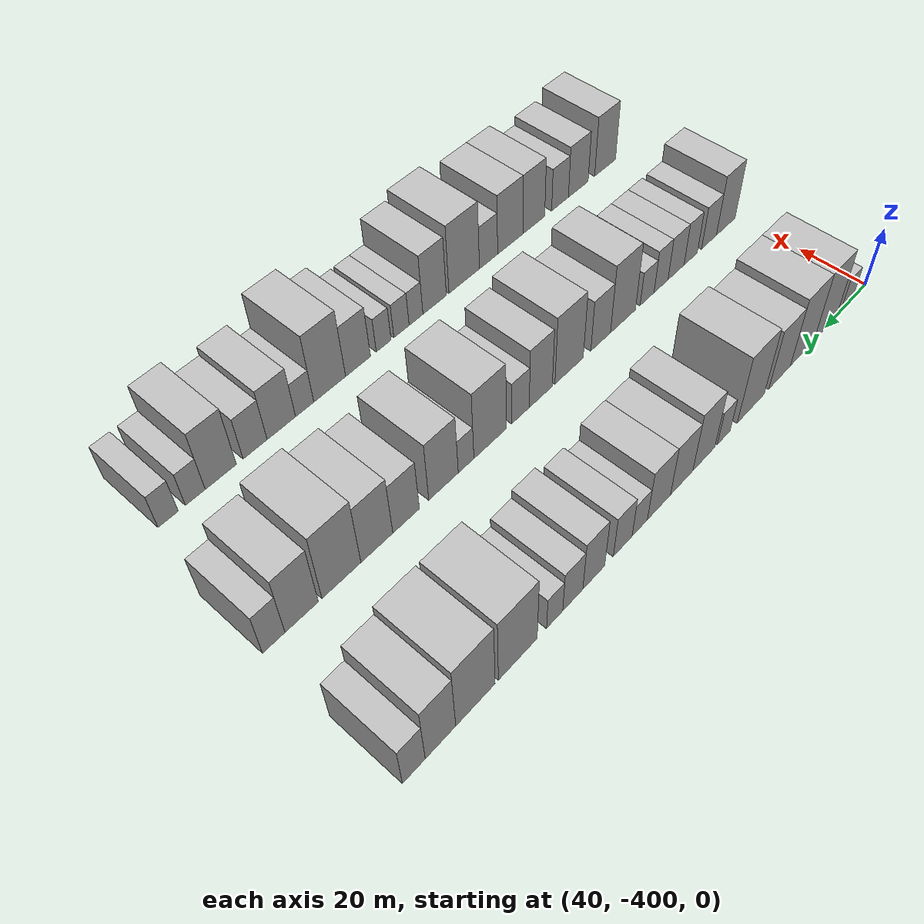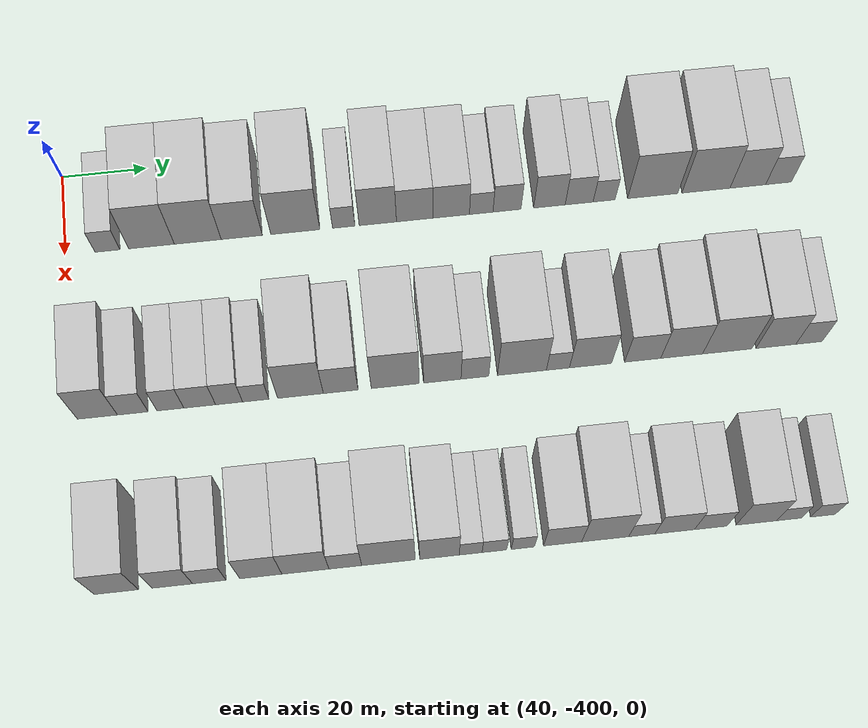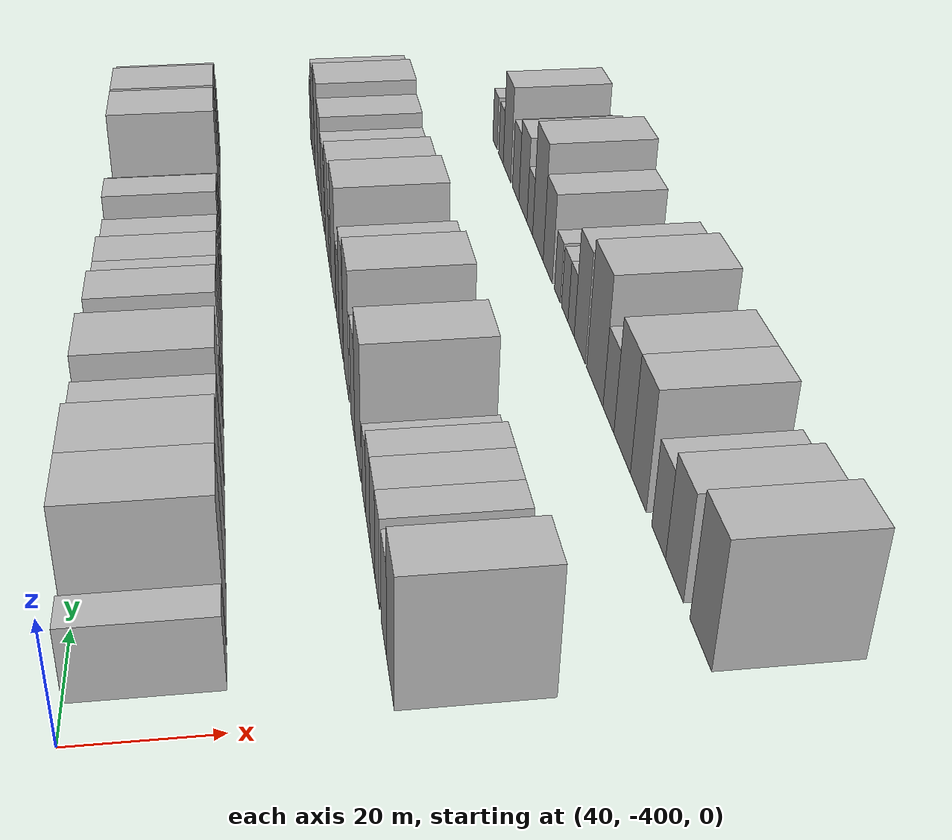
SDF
<sdf version="1.6">
 <world name="default">
  <model name="building_22">
   <static>1</static>
   <pose>50.0000 -390.0511 0 0.000000 0.000000 0.000000</pose>
   <link name="link">
    <pose>0 0 6.00 0 0 0</pose>
    <collision name="collision"><geometry><box><size>20.0000 5.8420 12.0000</size></box></geometry></collision>
    <visual name="visual">
     <cast_shadows>0</cast_shadows>
     <geometry><box><size>20.0000 5.8420 12.0000</size></box></geometry>
     <material>
      <script>
       <uri>model://HANNAS_wall/materials/scripts</uri>
       <uri>model://HANNAS_wall/materials/textures</uri>
       <name>vrc/HANNAS_wall</name>
      </script>
     </material>
    </visual>
   </link>
  </model>
  <model name="building_23">
   <static>1</static>
   <pose>50.0000 -379.7609 0 0.000000 0.000000 0.000000</pose>
   <link name="link">
    <pose>0 0 12.00 0 0 0</pose>
    <collision name="collision"><geometry><box><size>20.0000 10.7384 24.0000</size></box></geometry></collision>
    <visual name="visual">
     <cast_shadows>0</cast_shadows>
     <geometry><box><size>20.0000 10.7384 24.0000</size></box></geometry>
     <material>
      <script>
       <uri>model://HANNAS_wall/materials/scripts</uri>
       <uri>model://HANNAS_wall/materials/textures</uri>
       <name>vrc/HANNAS_wall</name>
      </script>
     </material>
    </visual>
   </link>
  </model>
  <model name="building_24">
   <static>1</static>
   <pose>50.0000 -368.8941 0 0.000000 0.000000 0.000000</pose>
   <link name="link">
    <pose>0 0 12.00 0 0 0</pose>
    <collision name="collision"><geometry><box><size>20.0000 10.9952 24.0000</size></box></geometry></collision>
    <visual name="visual">
     <cast_shadows>0</cast_shadows>
     <geometry><box><size>20.0000 10.9952 24.0000</size></box></geometry>
     <material>
      <script>
       <uri>model://HANNAS_wall/materials/scripts</uri>
       <uri>model://HANNAS_wall/materials/textures</uri>
       <name>vrc/HANNAS_wall</name>
      </script>
     </material>
    </visual>
   </link>
  </model>
  <model name="building_25">
   <static>1</static>
   <pose>50.0000 -358.5665 0 0.000000 0.000000 0.000000</pose>
   <link name="link">
    <pose>0 0 10.50 0 0 0</pose>
    <collision name="collision"><geometry><box><size>20.0000 9.6600 21.0000</size></box></geometry></collision>
    <visual name="visual">
     <cast_shadows>0</cast_shadows>
     <geometry><box><size>20.0000 9.6600 21.0000</size></box></geometry>
     <material>
      <script>
       <uri>model://HANNAS_wall/materials/scripts</uri>
       <uri>model://HANNAS_wall/materials/textures</uri>
       <name>vrc/HANNAS_wall</name>
      </script>
     </material>
    </visual>
   </link>
  </model>
  <model name="building_26">
   <static>1</static>
   <pose>50.0000 -345.9555 0 0.000000 0.000000 0.000000</pose>
   <link name="link">
    <pose>0 0 12.00 0 0 0</pose>
    <collision name="collision"><geometry><box><size>20.0000 11.5620 24.0000</size></box></geometry></collision>
    <visual name="visual">
     <cast_shadows>0</cast_shadows>
     <geometry><box><size>20.0000 11.5620 24.0000</size></box></geometry>
     <material>
      <script>
       <uri>model://HANNAS_wall/materials/scripts</uri>
       <uri>model://HANNAS_wall/materials/textures</uri>
       <name>vrc/HANNAS_wall</name>
      </script>
     </material>
    </visual>
   </link>
  </model>
  <model name="building_27">
   <static>1</static>
   <pose>50.0000 -334.5388 0 0.000000 0.000000 0.000000</pose>
   <link name="link">
    <pose>0 0 6.00 0 0 0</pose>
    <collision name="collision"><geometry><box><size>20.0000 5.2714 12.0000</size></box></geometry></collision>
    <visual name="visual">
     <cast_shadows>0</cast_shadows>
     <geometry><box><size>20.0000 5.2714 12.0000</size></box></geometry>
     <material>
      <script>
       <uri>model://HANNAS_wall/materials/scripts</uri>
       <uri>model://HANNAS_wall/materials/textures</uri>
       <name>vrc/HANNAS_wall</name>
      </script>
     </material>
    </visual>
   </link>
  </model>
  <model name="building_28">
   <static>1</static>
   <pose>50.0000 -326.4957 0 0.000000 0.000000 0.000000</pose>
   <link name="link">
    <pose>0 0 10.50 0 0 0</pose>
    <collision name="collision"><geometry><box><size>20.0000 8.8148 21.0000</size></box></geometry></collision>
    <visual name="visual">
     <cast_shadows>0</cast_shadows>
     <geometry><box><size>20.0000 8.8148 21.0000</size></box></geometry>
     <material>
      <script>
       <uri>model://HANNAS_wall/materials/scripts</uri>
       <uri>model://HANNAS_wall/materials/textures</uri>
       <name>vrc/HANNAS_wall</name>
      </script>
     </material>
    </visual>
   </link>
  </model>
  <model name="building_29">
   <static>1</static>
   <pose>50.0000 -317.7686 0 0.000000 0.000000 0.000000</pose>
   <link name="link">
    <pose>0 0 9.00 0 0 0</pose>
    <collision name="collision"><geometry><box><size>20.0000 8.6393 18.0000</size></box></geometry></collision>
    <visual name="visual">
     <cast_shadows>0</cast_shadows>
     <geometry><box><size>20.0000 8.6393 18.0000</size></box></geometry>
     <material>
      <script>
       <uri>model://HANNAS_wall/materials/scripts</uri>
       <uri>model://HANNAS_wall/materials/textures</uri>
       <name>vrc/HANNAS_wall</name>
      </script>
     </material>
    </visual>
   </link>
  </model>
  <model name="building_30">
   <static>1</static>
   <pose>50.0000 -309.1270 0 0.000000 0.000000 0.000000</pose>
   <link name="link">
    <pose>0 0 9.00 0 0 0</pose>
    <collision name="collision"><geometry><box><size>20.0000 8.6440 18.0000</size></box></geometry></collision>
    <visual name="visual">
     <cast_shadows>0</cast_shadows>
     <geometry><box><size>20.0000 8.6440 18.0000</size></box></geometry>
     <material>
      <script>
       <uri>model://HANNAS_wall/materials/scripts</uri>
       <uri>model://HANNAS_wall/materials/textures</uri>
       <name>vrc/HANNAS_wall</name>
      </script>
     </material>
    </visual>
   </link>
  </model>
  <model name="building_31">
   <static>1</static>
   <pose>50.0000 -302.0066 0 0.000000 0.000000 0.000000</pose>
   <link name="link">
    <pose>0 0 6.00 0 0 0</pose>
    <collision name="collision"><geometry><box><size>20.0000 5.5969 12.0000</size></box></geometry></collision>
    <visual name="visual">
     <cast_shadows>0</cast_shadows>
     <geometry><box><size>20.0000 5.5969 12.0000</size></box></geometry>
     <material>
      <script>
       <uri>model://HANNAS_wall/materials/scripts</uri>
       <uri>model://HANNAS_wall/materials/textures</uri>
       <name>vrc/HANNAS_wall</name>
      </script>
     </material>
    </visual>
   </link>
  </model>
  <model name="building_32">
   <static>1</static>
   <pose>50.0000 -295.8793 0 0.000000 0.000000 0.000000</pose>
   <link name="link">
    <pose>0 0 7.50 0 0 0</pose>
    <collision name="collision"><geometry><box><size>20.0000 6.6576 15.0000</size></box></geometry></collision>
    <visual name="visual">
     <cast_shadows>0</cast_shadows>
     <geometry><box><size>20.0000 6.6576 15.0000</size></box></geometry>
     <material>
      <script>
       <uri>model://HANNAS_wall/materials/scripts</uri>
       <uri>model://HANNAS_wall/materials/textures</uri>
       <name>vrc/HANNAS_wall</name>
      </script>
     </material>
    </visual>
   </link>
  </model>
  <model name="building_33">
   <static>1</static>
   <pose>50.0000 -285.7998 0 0.000000 0.000000 0.000000</pose>
   <link name="link">
    <pose>0 0 9.00 0 0 0</pose>
    <collision name="collision"><geometry><box><size>20.0000 7.5014 18.0000</size></box></geometry></collision>
    <visual name="visual">
     <cast_shadows>0</cast_shadows>
     <geometry><box><size>20.0000 7.5014 18.0000</size></box></geometry>
     <material>
      <script>
       <uri>model://HANNAS_wall/materials/scripts</uri>
       <uri>model://HANNAS_wall/materials/textures</uri>
       <name>vrc/HANNAS_wall</name>
      </script>
     </material>
    </visual>
   </link>
  </model>
  <model name="building_34">
   <static>1</static>
   <pose>50.0000 -278.7101 0 0.000000 0.000000 0.000000</pose>
   <link name="link">
    <pose>0 0 7.50 0 0 0</pose>
    <collision name="collision"><geometry><box><size>20.0000 6.6780 15.0000</size></box></geometry></collision>
    <visual name="visual">
     <cast_shadows>0</cast_shadows>
     <geometry><box><size>20.0000 6.6780 15.0000</size></box></geometry>
     <material>
      <script>
       <uri>model://HANNAS_wall/materials/scripts</uri>
       <uri>model://HANNAS_wall/materials/textures</uri>
       <name>vrc/HANNAS_wall</name>
      </script>
     </material>
    </visual>
   </link>
  </model>
  <model name="building_35">
   <static>1</static>
   <pose>50.0000 -272.7477 0 0.000000 0.000000 0.000000</pose>
   <link name="link">
    <pose>0 0 6.00 0 0 0</pose>
    <collision name="collision"><geometry><box><size>20.0000 5.2467 12.0000</size></box></geometry></collision>
    <visual name="visual">
     <cast_shadows>0</cast_shadows>
     <geometry><box><size>20.0000 5.2467 12.0000</size></box></geometry>
     <material>
      <script>
       <uri>model://HANNAS_wall/materials/scripts</uri>
       <uri>model://HANNAS_wall/materials/textures</uri>
       <name>vrc/HANNAS_wall</name>
      </script>
     </material>
    </visual>
   </link>
  </model>
  <model name="building_36">
   <static>1</static>
   <pose>50.0000 -261.1301 0 0.000000 0.000000 0.000000</pose>
   <link name="link">
    <pose>0 0 12.00 0 0 0</pose>
    <collision name="collision"><geometry><box><size>20.0000 11.9886 24.0000</size></box></geometry></collision>
    <visual name="visual">
     <cast_shadows>0</cast_shadows>
     <geometry><box><size>20.0000 11.9886 24.0000</size></box></geometry>
     <material>
      <script>
       <uri>model://HANNAS_wall/materials/scripts</uri>
       <uri>model://HANNAS_wall/materials/textures</uri>
       <name>vrc/HANNAS_wall</name>
      </script>
     </material>
    </visual>
   </link>
  </model>
  <model name="building_37">
   <static>1</static>
   <pose>50.0000 -248.3697 0 0.000000 0.000000 0.000000</pose>
   <link name="link">
    <pose>0 0 12.00 0 0 0</pose>
    <collision name="collision"><geometry><box><size>20.0000 11.5321 24.0000</size></box></geometry></collision>
    <visual name="visual">
     <cast_shadows>0</cast_shadows>
     <geometry><box><size>20.0000 11.5321 24.0000</size></box></geometry>
     <material>
      <script>
       <uri>model://HANNAS_wall/materials/scripts</uri>
       <uri>model://HANNAS_wall/materials/textures</uri>
       <name>vrc/HANNAS_wall</name>
      </script>
     </material>
    </visual>
   </link>
  </model>
  <model name="building_38">
   <static>1</static>
   <pose>50.0000 -238.3256 0 0.000000 0.000000 0.000000</pose>
   <link name="link">
    <pose>0 0 10.50 0 0 0</pose>
    <collision name="collision"><geometry><box><size>20.0000 8.5561 21.0000</size></box></geometry></collision>
    <visual name="visual">
     <cast_shadows>0</cast_shadows>
     <geometry><box><size>20.0000 8.5561 21.0000</size></box></geometry>
     <material>
      <script>
       <uri>model://HANNAS_wall/materials/scripts</uri>
       <uri>model://HANNAS_wall/materials/textures</uri>
       <name>vrc/HANNAS_wall</name>
      </script>
     </material>
    </visual>
   </link>
  </model>
  <model name="building_39">
   <static>1</static>
   <pose>50.0000 -230.9383 0 0.000000 0.000000 0.000000</pose>
   <link name="link">
    <pose>0 0 7.50 0 0 0</pose>
    <collision name="collision"><geometry><box><size>20.0000 6.2185 15.0000</size></box></geometry></collision>
    <visual name="visual">
     <cast_shadows>0</cast_shadows>
     <geometry><box><size>20.0000 6.2185 15.0000</size></box></geometry>
     <material>
      <script>
       <uri>model://HANNAS_wall/materials/scripts</uri>
       <uri>model://HANNAS_wall/materials/textures</uri>
       <name>vrc/HANNAS_wall</name>
      </script>
     </material>
    </visual>
   </link>
  </model>
  <model name="building_168">
   <static>1</static>
   <pose>90.0000 -394.0648 0 0.000000 0.000000 0.000000</pose>
   <link name="link">
    <pose>0 0 10.50 0 0 0</pose>
    <collision name="collision"><geometry><box><size>20.0000 9.0409 21.0000</size></box></geometry></collision>
    <visual name="visual">
     <cast_shadows>0</cast_shadows>
     <geometry><box><size>20.0000 9.0409 21.0000</size></box></geometry>
     <material>
      <script>
       <uri>model://HANNAS_wall/materials/scripts</uri>
       <uri>model://HANNAS_wall/materials/textures</uri>
       <name>vrc/HANNAS_wall</name>
      </script>
     </material>
    </visual>
   </link>
  </model>
  <model name="building_169">
   <static>1</static>
   <pose>90.0000 -386.0669 0 0.000000 0.000000 0.000000</pose>
   <link name="link">
    <pose>0 0 7.50 0 0 0</pose>
    <collision name="collision"><geometry><box><size>20.0000 6.9549 15.0000</size></box></geometry></collision>
    <visual name="visual">
     <cast_shadows>0</cast_shadows>
     <geometry><box><size>20.0000 6.9549 15.0000</size></box></geometry>
     <material>
      <script>
       <uri>model://HANNAS_wall/materials/scripts</uri>
       <uri>model://HANNAS_wall/materials/textures</uri>
       <name>vrc/HANNAS_wall</name>
      </script>
     </material>
    </visual>
   </link>
  </model>
  <model name="building_170">
   <static>1</static>
   <pose>90.0000 -377.5510 0 0.000000 0.000000 0.000000</pose>
   <link name="link">
    <pose>0 0 7.50 0 0 0</pose>
    <collision name="collision"><geometry><box><size>20.0000 6.0769 15.0000</size></box></geometry></collision>
    <visual name="visual">
     <cast_shadows>0</cast_shadows>
     <geometry><box><size>20.0000 6.0769 15.0000</size></box></geometry>
     <material>
      <script>
       <uri>model://HANNAS_wall/materials/scripts</uri>
       <uri>model://HANNAS_wall/materials/textures</uri>
       <name>vrc/HANNAS_wall</name>
      </script>
     </material>
    </visual>
   </link>
  </model>
  <model name="building_171">
   <static>1</static>
   <pose>90.0000 -370.9142 0 0.000000 0.000000 0.000000</pose>
   <link name="link">
    <pose>0 0 7.50 0 0 0</pose>
    <collision name="collision"><geometry><box><size>20.0000 7.1967 15.0000</size></box></geometry></collision>
    <visual name="visual">
     <cast_shadows>0</cast_shadows>
     <geometry><box><size>20.0000 7.1967 15.0000</size></box></geometry>
     <material>
      <script>
       <uri>model://HANNAS_wall/materials/scripts</uri>
       <uri>model://HANNAS_wall/materials/textures</uri>
       <name>vrc/HANNAS_wall</name>
      </script>
     </material>
    </visual>
   </link>
  </model>
  <model name="building_172">
   <static>1</static>
   <pose>90.0000 -364.2547 0 0.000000 0.000000 0.000000</pose>
   <link name="link">
    <pose>0 0 7.50 0 0 0</pose>
    <collision name="collision"><geometry><box><size>20.0000 6.1224 15.0000</size></box></geometry></collision>
    <visual name="visual">
     <cast_shadows>0</cast_shadows>
     <geometry><box><size>20.0000 6.1224 15.0000</size></box></geometry>
     <material>
      <script>
       <uri>model://HANNAS_wall/materials/scripts</uri>
       <uri>model://HANNAS_wall/materials/textures</uri>
       <name>vrc/HANNAS_wall</name>
      </script>
     </material>
    </visual>
   </link>
  </model>
  <model name="building_173">
   <static>1</static>
   <pose>90.0000 -358.2039 0 0.000000 0.000000 0.000000</pose>
   <link name="link">
    <pose>0 0 6.00 0 0 0</pose>
    <collision name="collision"><geometry><box><size>20.0000 5.9791 12.0000</size></box></geometry></collision>
    <visual name="visual">
     <cast_shadows>0</cast_shadows>
     <geometry><box><size>20.0000 5.9791 12.0000</size></box></geometry>
     <material>
      <script>
       <uri>model://HANNAS_wall/materials/scripts</uri>
       <uri>model://HANNAS_wall/materials/textures</uri>
       <name>vrc/HANNAS_wall</name>
      </script>
     </material>
    </visual>
   </link>
  </model>
  <model name="building_174">
   <static>1</static>
   <pose>90.0000 -348.0177 0 0.000000 0.000000 0.000000</pose>
   <link name="link">
    <pose>0 0 12.00 0 0 0</pose>
    <collision name="collision"><geometry><box><size>20.0000 10.3933 24.0000</size></box></geometry></collision>
    <visual name="visual">
     <cast_shadows>0</cast_shadows>
     <geometry><box><size>20.0000 10.3933 24.0000</size></box></geometry>
     <material>
      <script>
       <uri>model://HANNAS_wall/materials/scripts</uri>
       <uri>model://HANNAS_wall/materials/textures</uri>
       <name>vrc/HANNAS_wall</name>
      </script>
     </material>
    </visual>
   </link>
  </model>
  <model name="building_175">
   <static>1</static>
   <pose>90.0000 -338.8537 0 0.000000 0.000000 0.000000</pose>
   <link name="link">
    <pose>0 0 9.00 0 0 0</pose>
    <collision name="collision"><geometry><box><size>20.0000 7.9347 18.0000</size></box></geometry></collision>
    <visual name="visual">
     <cast_shadows>0</cast_shadows>
     <geometry><box><size>20.0000 7.9347 18.0000</size></box></geometry>
     <material>
      <script>
       <uri>model://HANNAS_wall/materials/scripts</uri>
       <uri>model://HANNAS_wall/materials/textures</uri>
       <name>vrc/HANNAS_wall</name>
      </script>
     </material>
    </visual>
   </link>
  </model>
  <model name="building_176">
   <static>1</static>
   <pose>90.0000 -326.4017 0 0.000000 0.000000 0.000000</pose>
   <link name="link">
    <pose>0 0 12.00 0 0 0</pose>
    <collision name="collision"><geometry><box><size>20.0000 10.9694 24.0000</size></box></geometry></collision>
    <visual name="visual">
     <cast_shadows>0</cast_shadows>
     <geometry><box><size>20.0000 10.9694 24.0000</size></box></geometry>
     <material>
      <script>
       <uri>model://HANNAS_wall/materials/scripts</uri>
       <uri>model://HANNAS_wall/materials/textures</uri>
       <name>vrc/HANNAS_wall</name>
      </script>
     </material>
    </visual>
   </link>
  </model>
  <model name="building_177">
   <static>1</static>
   <pose>90.0000 -315.6308 0 0.000000 0.000000 0.000000</pose>
   <link name="link">
    <pose>0 0 10.50 0 0 0</pose>
    <collision name="collision"><geometry><box><size>20.0000 8.5724 21.0000</size></box></geometry></collision>
    <visual name="visual">
     <cast_shadows>0</cast_shadows>
     <geometry><box><size>20.0000 8.5724 21.0000</size></box></geometry>
     <material>
      <script>
       <uri>model://HANNAS_wall/materials/scripts</uri>
       <uri>model://HANNAS_wall/materials/textures</uri>
       <name>vrc/HANNAS_wall</name>
      </script>
     </material>
    </visual>
   </link>
  </model>
  <model name="building_178">
   <static>1</static>
   <pose>90.0000 -308.1661 0 0.000000 0.000000 0.000000</pose>
   <link name="link">
    <pose>0 0 7.50 0 0 0</pose>
    <collision name="collision"><geometry><box><size>20.0000 6.3571 15.0000</size></box></geometry></collision>
    <visual name="visual">
     <cast_shadows>0</cast_shadows>
     <geometry><box><size>20.0000 6.3571 15.0000</size></box></geometry>
     <material>
      <script>
       <uri>model://HANNAS_wall/materials/scripts</uri>
       <uri>model://HANNAS_wall/materials/textures</uri>
       <name>vrc/HANNAS_wall</name>
      </script>
     </material>
    </visual>
   </link>
  </model>
  <model name="building_179">
   <static>1</static>
   <pose>90.0000 -297.3634 0 0.000000 0.000000 0.000000</pose>
   <link name="link">
    <pose>0 0 12.00 0 0 0</pose>
    <collision name="collision"><geometry><box><size>20.0000 11.2482 24.0000</size></box></geometry></collision>
    <visual name="visual">
     <cast_shadows>0</cast_shadows>
     <geometry><box><size>20.0000 11.2482 24.0000</size></box></geometry>
     <material>
      <script>
       <uri>model://HANNAS_wall/materials/scripts</uri>
       <uri>model://HANNAS_wall/materials/textures</uri>
       <name>vrc/HANNAS_wall</name>
      </script>
     </material>
    </visual>
   </link>
  </model>
  <model name="building_180">
   <static>1</static>
   <pose>90.0000 -289.0930 0 0.000000 0.000000 0.000000</pose>
   <link name="link">
    <pose>0 0 6.00 0 0 0</pose>
    <collision name="collision"><geometry><box><size>20.0000 5.2927 12.0000</size></box></geometry></collision>
    <visual name="visual">
     <cast_shadows>0</cast_shadows>
     <geometry><box><size>20.0000 5.2927 12.0000</size></box></geometry>
     <material>
      <script>
       <uri>model://HANNAS_wall/materials/scripts</uri>
       <uri>model://HANNAS_wall/materials/textures</uri>
       <name>vrc/HANNAS_wall</name>
      </script>
     </material>
    </visual>
   </link>
  </model>
  <model name="building_181">
   <static>1</static>
   <pose>90.0000 -281.5855 0 0.000000 0.000000 0.000000</pose>
   <link name="link">
    <pose>0 0 10.50 0 0 0</pose>
    <collision name="collision"><geometry><box><size>20.0000 9.7224 21.0000</size></box></geometry></collision>
    <visual name="visual">
     <cast_shadows>0</cast_shadows>
     <geometry><box><size>20.0000 9.7224 21.0000</size></box></geometry>
     <material>
      <script>
       <uri>model://HANNAS_wall/materials/scripts</uri>
       <uri>model://HANNAS_wall/materials/textures</uri>
       <name>vrc/HANNAS_wall</name>
      </script>
     </material>
    </visual>
   </link>
  </model>
  <model name="building_182">
   <static>1</static>
   <pose>90.0000 -269.5433 0 0.000000 0.000000 0.000000</pose>
   <link name="link">
    <pose>0 0 9.00 0 0 0</pose>
    <collision name="collision"><geometry><box><size>20.0000 8.3619 18.0000</size></box></geometry></collision>
    <visual name="visual">
     <cast_shadows>0</cast_shadows>
     <geometry><box><size>20.0000 8.3619 18.0000</size></box></geometry>
     <material>
      <script>
       <uri>model://HANNAS_wall/materials/scripts</uri>
       <uri>model://HANNAS_wall/materials/textures</uri>
       <name>vrc/HANNAS_wall</name>
      </script>
     </material>
    </visual>
   </link>
  </model>
  <model name="building_183">
   <static>1</static>
   <pose>90.0000 -260.5118 0 0.000000 0.000000 0.000000</pose>
   <link name="link">
    <pose>0 0 10.50 0 0 0</pose>
    <collision name="collision"><geometry><box><size>20.0000 9.7011 21.0000</size></box></geometry></collision>
    <visual name="visual">
     <cast_shadows>0</cast_shadows>
     <geometry><box><size>20.0000 9.7011 21.0000</size></box></geometry>
     <material>
      <script>
       <uri>model://HANNAS_wall/materials/scripts</uri>
       <uri>model://HANNAS_wall/materials/textures</uri>
       <name>vrc/HANNAS_wall</name>
      </script>
     </material>
    </visual>
   </link>
  </model>
  <model name="building_184">
   <static>1</static>
   <pose>90.0000 -249.9628 0 0.000000 0.000000 0.000000</pose>
   <link name="link">
    <pose>0 0 12.00 0 0 0</pose>
    <collision name="collision"><geometry><box><size>20.0000 11.3970 24.0000</size></box></geometry></collision>
    <visual name="visual">
     <cast_shadows>0</cast_shadows>
     <geometry><box><size>20.0000 11.3970 24.0000</size></box></geometry>
     <material>
      <script>
       <uri>model://HANNAS_wall/materials/scripts</uri>
       <uri>model://HANNAS_wall/materials/textures</uri>
       <name>vrc/HANNAS_wall</name>
      </script>
     </material>
    </visual>
   </link>
  </model>
  <model name="building_185">
   <static>1</static>
   <pose>90.0000 -238.6274 0 0.000000 0.000000 0.000000</pose>
   <link name="link">
    <pose>0 0 10.50 0 0 0</pose>
    <collision name="collision"><geometry><box><size>20.0000 9.2737 21.0000</size></box></geometry></collision>
    <visual name="visual">
     <cast_shadows>0</cast_shadows>
     <geometry><box><size>20.0000 9.2737 21.0000</size></box></geometry>
     <material>
      <script>
       <uri>model://HANNAS_wall/materials/scripts</uri>
       <uri>model://HANNAS_wall/materials/textures</uri>
       <name>vrc/HANNAS_wall</name>
      </script>
     </material>
    </visual>
   </link>
  </model>
  <model name="building_186">
   <static>1</static>
   <pose>90.0000 -230.9327 0 0.000000 0.000000 0.000000</pose>
   <link name="link">
    <pose>0 0 7.50 0 0 0</pose>
    <collision name="collision"><geometry><box><size>20.0000 6.1157 15.0000</size></box></geometry></collision>
    <visual name="visual">
     <cast_shadows>0</cast_shadows>
     <geometry><box><size>20.0000 6.1157 15.0000</size></box></geometry>
     <material>
      <script>
       <uri>model://HANNAS_wall/materials/scripts</uri>
       <uri>model://HANNAS_wall/materials/textures</uri>
       <name>vrc/HANNAS_wall</name>
      </script>
     </material>
    </visual>
   </link>
  </model>
  <model name="building_297">
   <static>1</static>
   <pose>130.0000 -391.6073 0 0.000000 0.000000 0.000000</pose>
   <link name="link">
    <pose>0 0 10.50 0 0 0</pose>
    <collision name="collision"><geometry><box><size>20.0000 9.6499 21.0000</size></box></geometry></collision>
    <visual name="visual">
     <cast_shadows>0</cast_shadows>
     <geometry><box><size>20.0000 9.6499 21.0000</size></box></geometry>
     <material>
      <script>
       <uri>model://HANNAS_wall/materials/scripts</uri>
       <uri>model://HANNAS_wall/materials/textures</uri>
       <name>vrc/HANNAS_wall</name>
      </script>
     </material>
    </visual>
   </link>
  </model>
  <model name="building_298">
   <static>1</static>
   <pose>130.0000 -379.3631 0 0.000000 0.000000 0.000000</pose>
   <link name="link">
    <pose>0 0 9.00 0 0 0</pose>
    <collision name="collision"><geometry><box><size>20.0000 8.8384 18.0000</size></box></geometry></collision>
    <visual name="visual">
     <cast_shadows>0</cast_shadows>
     <geometry><box><size>20.0000 8.8384 18.0000</size></box></geometry>
     <material>
      <script>
       <uri>model://HANNAS_wall/materials/scripts</uri>
       <uri>model://HANNAS_wall/materials/textures</uri>
       <name>vrc/HANNAS_wall</name>
      </script>
     </material>
    </visual>
   </link>
  </model>
  <model name="building_299">
   <static>1</static>
   <pose>130.0000 -371.2778 0 0.000000 0.000000 0.000000</pose>
   <link name="link">
    <pose>0 0 7.50 0 0 0</pose>
    <collision name="collision"><geometry><box><size>20.0000 7.3323 15.0000</size></box></geometry></collision>
    <visual name="visual">
     <cast_shadows>0</cast_shadows>
     <geometry><box><size>20.0000 7.3323 15.0000</size></box></geometry>
     <material>
      <script>
       <uri>model://HANNAS_wall/materials/scripts</uri>
       <uri>model://HANNAS_wall/materials/textures</uri>
       <name>vrc/HANNAS_wall</name>
      </script>
     </material>
    </visual>
   </link>
  </model>
  <model name="building_300">
   <static>1</static>
   <pose>130.0000 -359.9958 0 0.000000 0.000000 0.000000</pose>
   <link name="link">
    <pose>0 0 10.50 0 0 0</pose>
    <collision name="collision"><geometry><box><size>20.0000 9.2318 21.0000</size></box></geometry></collision>
    <visual name="visual">
     <cast_shadows>0</cast_shadows>
     <geometry><box><size>20.0000 9.2318 21.0000</size></box></geometry>
     <material>
      <script>
       <uri>model://HANNAS_wall/materials/scripts</uri>
       <uri>model://HANNAS_wall/materials/textures</uri>
       <name>vrc/HANNAS_wall</name>
      </script>
     </material>
    </visual>
   </link>
  </model>
  <model name="building_301">
   <static>1</static>
   <pose>130.0000 -350.2088 0 0.000000 0.000000 0.000000</pose>
   <link name="link">
    <pose>0 0 10.50 0 0 0</pose>
    <collision name="collision"><geometry><box><size>20.0000 10.3421 21.0000</size></box></geometry></collision>
    <visual name="visual">
     <cast_shadows>0</cast_shadows>
     <geometry><box><size>20.0000 10.3421 21.0000</size></box></geometry>
     <material>
      <script>
       <uri>model://HANNAS_wall/materials/scripts</uri>
       <uri>model://HANNAS_wall/materials/textures</uri>
       <name>vrc/HANNAS_wall</name>
      </script>
     </material>
    </visual>
   </link>
  </model>
  <model name="building_302">
   <static>1</static>
   <pose>130.0000 -341.4178 0 0.000000 0.000000 0.000000</pose>
   <link name="link">
    <pose>0 0 7.50 0 0 0</pose>
    <collision name="collision"><geometry><box><size>20.0000 7.2398 15.0000</size></box></geometry></collision>
    <visual name="visual">
     <cast_shadows>0</cast_shadows>
     <geometry><box><size>20.0000 7.2398 15.0000</size></box></geometry>
     <material>
      <script>
       <uri>model://HANNAS_wall/materials/scripts</uri>
       <uri>model://HANNAS_wall/materials/textures</uri>
       <name>vrc/HANNAS_wall</name>
      </script>
     </material>
    </visual>
   </link>
  </model>
  <model name="building_303">
   <static>1</static>
   <pose>130.0000 -331.9038 0 0.000000 0.000000 0.000000</pose>
   <link name="link">
    <pose>0 0 12.00 0 0 0</pose>
    <collision name="collision"><geometry><box><size>20.0000 11.7884 24.0000</size></box></geometry></collision>
    <visual name="visual">
     <cast_shadows>0</cast_shadows>
     <geometry><box><size>20.0000 11.7884 24.0000</size></box></geometry>
     <material>
      <script>
       <uri>model://HANNAS_wall/materials/scripts</uri>
       <uri>model://HANNAS_wall/materials/textures</uri>
       <name>vrc/HANNAS_wall</name>
      </script>
     </material>
    </visual>
   </link>
  </model>
  <model name="building_304">
   <static>1</static>
   <pose>130.0000 -320.6479 0 0.000000 0.000000 0.000000</pose>
   <link name="link">
    <pose>0 0 10.50 0 0 0</pose>
    <collision name="collision"><geometry><box><size>20.0000 8.7233 21.0000</size></box></geometry></collision>
    <visual name="visual">
     <cast_shadows>0</cast_shadows>
     <geometry><box><size>20.0000 8.7233 21.0000</size></box></geometry>
     <material>
      <script>
       <uri>model://HANNAS_wall/materials/scripts</uri>
       <uri>model://HANNAS_wall/materials/textures</uri>
       <name>vrc/HANNAS_wall</name>
      </script>
     </material>
    </visual>
   </link>
  </model>
  <model name="building_305">
   <static>1</static>
   <pose>130.0000 -313.7650 0 0.000000 0.000000 0.000000</pose>
   <link name="link">
    <pose>0 0 6.00 0 0 0</pose>
    <collision name="collision"><geometry><box><size>20.0000 5.0424 12.0000</size></box></geometry></collision>
    <visual name="visual">
     <cast_shadows>0</cast_shadows>
     <geometry><box><size>20.0000 5.0424 12.0000</size></box></geometry>
     <material>
      <script>
       <uri>model://HANNAS_wall/materials/scripts</uri>
       <uri>model://HANNAS_wall/materials/textures</uri>
       <name>vrc/HANNAS_wall</name>
      </script>
     </material>
    </visual>
   </link>
  </model>
  <model name="building_306">
   <static>1</static>
   <pose>130.0000 -308.5142 0 0.000000 0.000000 0.000000</pose>
   <link name="link">
    <pose>0 0 6.00 0 0 0</pose>
    <collision name="collision"><geometry><box><size>20.0000 5.4593 12.0000</size></box></geometry></collision>
    <visual name="visual">
     <cast_shadows>0</cast_shadows>
     <geometry><box><size>20.0000 5.4593 12.0000</size></box></geometry>
     <material>
      <script>
       <uri>model://HANNAS_wall/materials/scripts</uri>
       <uri>model://HANNAS_wall/materials/textures</uri>
       <name>vrc/HANNAS_wall</name>
      </script>
     </material>
    </visual>
   </link>
  </model>
  <model name="building_307">
   <static>1</static>
   <pose>130.0000 -302.1926 0 0.000000 0.000000 0.000000</pose>
   <link name="link">
    <pose>0 0 6.00 0 0 0</pose>
    <collision name="collision"><geometry><box><size>20.0000 5.1838 12.0000</size></box></geometry></collision>
    <visual name="visual">
     <cast_shadows>0</cast_shadows>
     <geometry><box><size>20.0000 5.1838 12.0000</size></box></geometry>
     <material>
      <script>
       <uri>model://HANNAS_wall/materials/scripts</uri>
       <uri>model://HANNAS_wall/materials/textures</uri>
       <name>vrc/HANNAS_wall</name>
      </script>
     </material>
    </visual>
   </link>
  </model>
  <model name="building_308">
   <static>1</static>
   <pose>130.0000 -293.3657 0 0.000000 0.000000 0.000000</pose>
   <link name="link">
    <pose>0 0 9.00 0 0 0</pose>
    <collision name="collision"><geometry><box><size>20.0000 8.4700 18.0000</size></box></geometry></collision>
    <visual name="visual">
     <cast_shadows>0</cast_shadows>
     <geometry><box><size>20.0000 8.4700 18.0000</size></box></geometry>
     <material>
      <script>
       <uri>model://HANNAS_wall/materials/scripts</uri>
       <uri>model://HANNAS_wall/materials/textures</uri>
       <name>vrc/HANNAS_wall</name>
      </script>
     </material>
    </visual>
   </link>
  </model>
  <model name="building_309">
   <static>1</static>
   <pose>130.0000 -283.8906 0 0.000000 0.000000 0.000000</pose>
   <link name="link">
    <pose>0 0 12.00 0 0 0</pose>
    <collision name="collision"><geometry><box><size>20.0000 10.4804 24.0000</size></box></geometry></collision>
    <visual name="visual">
     <cast_shadows>0</cast_shadows>
     <geometry><box><size>20.0000 10.4804 24.0000</size></box></geometry>
     <material>
      <script>
       <uri>model://HANNAS_wall/materials/scripts</uri>
       <uri>model://HANNAS_wall/materials/textures</uri>
       <name>vrc/HANNAS_wall</name>
      </script>
     </material>
    </visual>
   </link>
  </model>
  <model name="building_310">
   <static>1</static>
   <pose>130.0000 -275.7303 0 0.000000 0.000000 0.000000</pose>
   <link name="link">
    <pose>0 0 6.00 0 0 0</pose>
    <collision name="collision"><geometry><box><size>20.0000 5.8401 12.0000</size></box></geometry></collision>
    <visual name="visual">
     <cast_shadows>0</cast_shadows>
     <geometry><box><size>20.0000 5.8401 12.0000</size></box></geometry>
     <material>
      <script>
       <uri>model://HANNAS_wall/materials/scripts</uri>
       <uri>model://HANNAS_wall/materials/textures</uri>
       <name>vrc/HANNAS_wall</name>
      </script>
     </material>
    </visual>
   </link>
  </model>
  <model name="building_311">
   <static>1</static>
   <pose>130.0000 -268.3710 0 0.000000 0.000000 0.000000</pose>
   <link name="link">
    <pose>0 0 9.00 0 0 0</pose>
    <collision name="collision"><geometry><box><size>20.0000 8.8785 18.0000</size></box></geometry></collision>
    <visual name="visual">
     <cast_shadows>0</cast_shadows>
     <geometry><box><size>20.0000 8.8785 18.0000</size></box></geometry>
     <material>
      <script>
       <uri>model://HANNAS_wall/materials/scripts</uri>
       <uri>model://HANNAS_wall/materials/textures</uri>
       <name>vrc/HANNAS_wall</name>
      </script>
     </material>
    </visual>
   </link>
  </model>
  <model name="building_312">
   <static>1</static>
   <pose>130.0000 -260.2960 0 0.000000 0.000000 0.000000</pose>
   <link name="link">
    <pose>0 0 7.50 0 0 0</pose>
    <collision name="collision"><geometry><box><size>20.0000 7.2715 15.0000</size></box></geometry></collision>
    <visual name="visual">
     <cast_shadows>0</cast_shadows>
     <geometry><box><size>20.0000 7.2715 15.0000</size></box></geometry>
     <material>
      <script>
       <uri>model://HANNAS_wall/materials/scripts</uri>
       <uri>model://HANNAS_wall/materials/textures</uri>
       <name>vrc/HANNAS_wall</name>
      </script>
     </material>
    </visual>
   </link>
  </model>
  <model name="building_313">
   <static>1</static>
   <pose>130.0000 -250.1205 0 0.000000 0.000000 0.000000</pose>
   <link name="link">
    <pose>0 0 10.50 0 0 0</pose>
    <collision name="collision"><geometry><box><size>20.0000 9.0794 21.0000</size></box></geometry></collision>
    <visual name="visual">
     <cast_shadows>0</cast_shadows>
     <geometry><box><size>20.0000 9.0794 21.0000</size></box></geometry>
     <material>
      <script>
       <uri>model://HANNAS_wall/materials/scripts</uri>
       <uri>model://HANNAS_wall/materials/textures</uri>
       <name>vrc/HANNAS_wall</name>
      </script>
     </material>
    </visual>
   </link>
  </model>
  <model name="building_314">
   <static>1</static>
   <pose>130.0000 -242.7657 0 0.000000 0.000000 0.000000</pose>
   <link name="link">
    <pose>0 0 6.00 0 0 0</pose>
    <collision name="collision"><geometry><box><size>20.0000 5.6302 12.0000</size></box></geometry></collision>
    <visual name="visual">
     <cast_shadows>0</cast_shadows>
     <geometry><box><size>20.0000 5.6302 12.0000</size></box></geometry>
     <material>
      <script>
       <uri>model://HANNAS_wall/materials/scripts</uri>
       <uri>model://HANNAS_wall/materials/textures</uri>
       <name>vrc/HANNAS_wall</name>
      </script>
     </material>
    </visual>
   </link>
  </model>
  <model name="building_315">
   <static>1</static>
   <pose>130.0000 -235.1568 0 0.000000 0.000000 0.000000</pose>
   <link name="link">
    <pose>0 0 6.00 0 0 0</pose>
    <collision name="collision"><geometry><box><size>20.0000 5.5876 12.0000</size></box></geometry></collision>
    <visual name="visual">
     <cast_shadows>0</cast_shadows>
     <geometry><box><size>20.0000 5.5876 12.0000</size></box></geometry>
     <material>
      <script>
       <uri>model://HANNAS_wall/materials/scripts</uri>
       <uri>model://HANNAS_wall/materials/textures</uri>
       <name>vrc/HANNAS_wall</name>
      </script>
     </material>
    </visual>
   </link>
  </model>
 </world>
</sdf>
